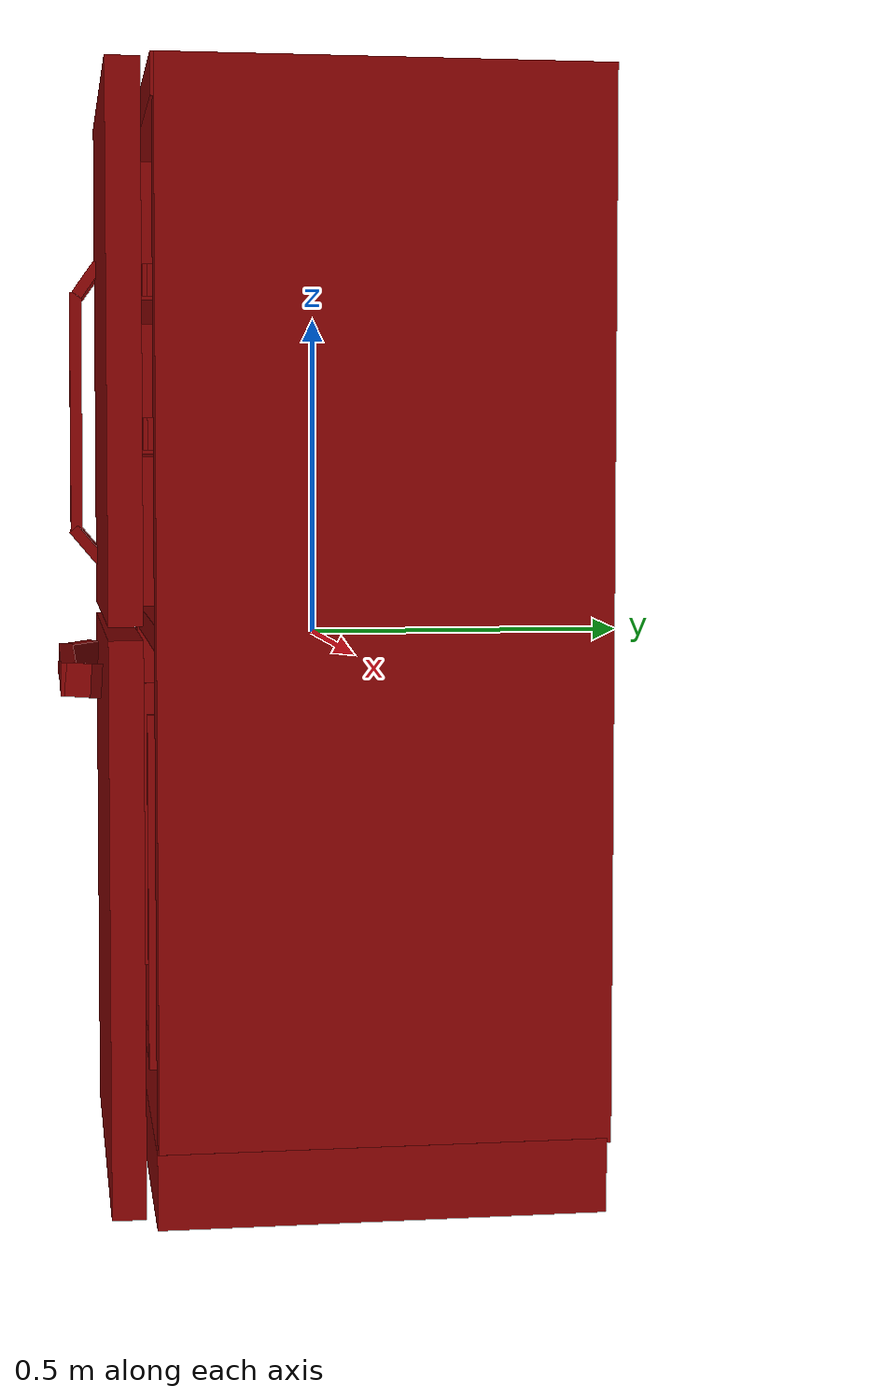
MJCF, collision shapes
<mujoco model="model">
  <compiler angle="radian"/>
  <asset>
    <mesh file="visuals/Body001.obj" name="Body001_vis"/>
    <mesh file="visuals/Body001_Clear.obj" name="Body001_Clear_vis"/>
    <mesh file="visuals/Door001.obj" name="Door001_vis"/>
    <mesh file="visuals/Door001_Clear.obj" name="Door001_Clear_vis"/>
    <mesh file="visuals/Drawer001.obj" name="Drawer001_vis"/>
    <mesh file="visuals/Drawer002.obj" name="Drawer002_vis"/>
    <texture file="visuals/T_BC001.png" name="Body001_material" type="2d"/>
    <material name="Body001_material" rgba="1 1 1 1.0" texture="Body001_material" shininess="0.4472135901451111" specular="1"/>
    <texture file="visuals/T_BC001.png" name="Body001_Clear_material" type="2d"/>
    <material name="Body001_Clear_material" rgba="1 1 1 0.30000001192092896" texture="Body001_Clear_material" shininess="0.4472135901451111" specular="1"/>
    <texture file="visuals/T_BC001.png" name="Door001_material" type="2d"/>
    <material name="Door001_material" rgba="1 1 1 1.0" texture="Door001_material" shininess="0.4472135901451111" specular="1"/>
    <texture file="visuals/T_BC001.png" name="Door001_Clear_material" type="2d"/>
    <material name="Door001_Clear_material" rgba="1 1 1 0.30000001192092896" texture="Door001_Clear_material" shininess="0.4472135901451111" specular="1"/>
    <texture file="visuals/T_BC001.png" name="Drawer001_material" type="2d"/>
    <material name="Drawer001_material" rgba="1 1 1 1.0" texture="Drawer001_material" shininess="0.4472135901451111" specular="1"/>
    <texture file="visuals/T_BC001.png" name="Drawer002_material" type="2d"/>
    <material name="Drawer002_material" rgba="1 1 1 1.0" texture="Drawer002_material" shininess="0.4472135901451111" specular="1"/>
  </asset>
  <default>
    <default class="visual">
      <geom conaffinity="0" contype="0" group="1" type="mesh"/>
    </default>
    <default class="collision">
      <geom group="0" rgba="0.5 0 0 0.5"/>
    </default>
    <default class="spawn">
      <geom group="0" rgba="1 1 1 0.5" contype="0" conaffinity="0"/>
      <site group="0" rgba="1 1 1 0.5"/>
    </default>
    <default class="region">
      <geom group="1" conaffinity="0" contype="0" rgba="0 1 0 0"/>
    </default>
  </default>
  <worldbody>
    <body>
      <body name="object">
        <geom mesh="Body001_vis" type="mesh" solimp="0.998 0.998 0.001" solref="0.001 1" density="100" friction="0.95 0.3 0.1" class="visual" material="Body001_material"/>
        <geom class="collision" type="box" pos="0.000207 0.062188 -0.795457" size="0.38474640250205994 0.335809588432312 0.0562896654009819" quat="1.0 0.0 0.0 0.0"/>
        <geom class="collision" type="box" pos="-0.350294 0.066857 0.052984" size="0.03464663401246071 0.3377648890018463 0.7989732623100281" quat="1.0 0.0 0.0 0.0"/>
        <geom class="collision" type="box" pos="0.350830 0.066857 0.052984" size="0.033837202936410904 0.3377648890018463 0.7989732623100281" quat="1.0 0.0 0.0 0.0"/>
        <geom class="collision" type="box" pos="-0.002849 0.377942 0.052984" size="0.35339677333831787 0.027666687965393066 0.7989393472671509" quat="1.0 0.0 0.0 0.0"/>
        <geom class="collision" type="box" pos="-0.000035 0.061811 0.820714" size="0.38462385535240173 0.3375667929649353 0.031095992773771286" quat="1.0 0.0 0.0 0.0"/>
        <geom class="collision" type="box" pos="-0.000403 0.047778 0.006842" size="0.32612743973731995 0.31402212381362915 0.019892623648047447" quat="1.0 0.0 0.0 0.0"/>
        <body name="Body001_Clear">
          <geom mesh="Body001_Clear_vis" type="mesh" solimp="0.998 0.998 0.001" solref="0.001 1" density="100" friction="0.95 0.3 0.1" class="visual" material="Body001_Clear_material"/>
          <geom class="collision" type="box" pos="-0.000403 0.100657 0.177922" size="0.32995685935020447 0.26769569516181946 0.007554279174655676" quat="1.0 0.0 0.0 0.0"/>
          <geom class="collision" type="box" pos="-0.000403 0.100657 0.493177" size="0.32995718717575073 0.2676953971385956 0.009101681411266327" quat="1.0 0.0 0.0 0.0"/>
        </body>
        <body name="Door001">
          <joint axis="0.0 0.0 1.0" pos="0.345994 -0.314630 0.471886" limited="true" name="Door001_joint" range="0.0 1.5707963267948966" type="hinge" damping="1" frictionloss="1" armature=".01" stiffness="0.05"/>
          <geom mesh="Door001_vis" type="mesh" solimp="0.998 0.998 0.001" solref="0.001 1" density="100" friction="0.95 0.3 0.1" class="visual" material="Door001_material"/>
          <geom class="collision" type="box" pos="-0.018301 -0.313358 0.441951" size="0.3616938292980194 0.025627538561820984 0.410133957862854" quat="1.0 0.0 0.0 0.0"/>
          <geom class="collision" type="box" pos="-0.323685 -0.373325 0.359776" size="0.021720388904213905 0.010037459433078766 0.20516718924045563" quat="1.0 0.0 0.0 0.0"/>
          <geom class="collision" type="box" pos="-0.323685 -0.351311 0.585554" size="0.03235507756471634 0.00965392030775547 0.021713199093937874" quat="0.6922426819801331 -0.18632327020168304 0.6547523736953735 -0.23954761028289795"/>
          <geom class="collision" type="box" pos="-0.323685 -0.351977 0.131928" size="0.04001263529062271 0.00952011439949274 0.0217122845351696" quat="0.6414079070091248 0.2679930031299591 0.6859421133995056 0.21507927775382996"/>
          <body name="Door001_Clear">
            <geom mesh="Door001_Clear_vis" type="mesh" solimp="0.998 0.998 0.001" solref="0.001 1" density="100" friction="0.95 0.3 0.1" class="visual" material="Door001_Clear_material"/>
            <geom class="collision" type="box" pos="-0.000403 -0.233061 0.512875" size="0.2680552899837494 0.051691677421331406 0.0026308554224669933" quat="1.0 0.0 0.0 0.0"/>
            <geom class="collision" type="box" pos="-0.000403 -0.181367 0.536245" size="0.2680552899837494 0.02683096192777157 0.0031687419395893812" quat="0.7433175444602966 0.6689386963844299 -1.370751565657062e-16 2.3012940536639805e-17"/>
            <geom class="collision" type="box" pos="-0.000403 -0.280055 0.537071" size="0.2680506706237793 0.003174012992531061 0.026299597695469856" quat="1.0 0.0 0.0 0.0"/>
            <geom class="collision" type="box" pos="-0.266085 -0.227788 0.537071" size="0.003381570568308234 0.054306916892528534 0.02629960887134075" quat="1.0 0.0 0.0 0.0"/>
            <geom class="collision" type="box" pos="0.261975 -0.227788 0.537071" size="0.003381570568308234 0.054306916892528534 0.02629960887134075" quat="1.0 0.0 0.0 0.0"/>
            <geom class="collision" type="box" pos="-0.000403 -0.233061 0.287084" size="0.2680552899837494 0.05169135704636574 0.0026308391243219376" quat="1.0 0.0 0.0 0.0"/>
            <geom class="collision" type="box" pos="-0.000403 -0.181367 0.310454" size="0.2680552899837494 0.02683096192777157 0.0031687419395893812" quat="0.7433175444602966 0.6689386963844299 -1.370751565657062e-16 2.3012940536639805e-17"/>
            <geom class="collision" type="box" pos="-0.000403 -0.280055 0.311281" size="0.26805150508880615 0.003174012992531061 0.026299597695469856" quat="1.0 0.0 0.0 0.0"/>
            <geom class="collision" type="box" pos="-0.266085 -0.227788 0.311281" size="0.003381570568308234 0.054306916892528534 0.02629960887134075" quat="1.0 0.0 0.0 0.0"/>
            <geom class="collision" type="box" pos="0.261975 -0.227788 0.311281" size="0.003381570568308234 0.054306916892528534 0.02629960887134075" quat="1.0 0.0 0.0 0.0"/>
          </body>
        </body>
        <body name="Drawer001">
          <joint axis="0.0 -1.0 0.0" pos="0.001412 0.033691 0.119746" limited="true" name="Drawer001_joint" range="0.0 0.5" type="slide" damping="1" frictionloss="1" armature=".01" stiffness="0.05"/>
          <geom mesh="Drawer001_vis" type="mesh" solimp="0.998 0.998 0.001" solref="0.001 1" density="100" friction="0.95 0.3 0.1" class="visual" material="Drawer001_material"/>
          <geom class="collision" type="box" pos="0.001412 0.044360 0.049253" size="0.29042309522628784 0.26674360036849976 0.015563731081783772" quat="1.0 0.0 0.0 0.0"/>
          <geom class="collision" type="box" pos="0.001412 0.304718 0.110836" size="0.2904320955276489 0.007167108356952667 0.052098702639341354" quat="1.0 0.0 0.0 0.0"/>
          <geom class="collision" type="box" pos="0.001412 -0.220850 0.110836" size="0.2904316484928131 0.007167100440710783 0.05209861323237419" quat="1.0 0.0 0.0 0.0"/>
          <geom class="collision" type="box" pos="-0.278554 0.041934 0.110836" size="0.007635742425918579 0.2726026177406311 0.05209760367870331" quat="1.0 0.0 0.0 0.0"/>
          <geom class="collision" type="box" pos="0.279654 0.041934 0.110836" size="0.007635742425918579 0.2726026177406311 0.05209760367870331" quat="1.0 0.0 0.0 0.0"/>
        </body>
        <body name="Drawer002">
          <joint axis="0.0 -1.0 0.0" pos="0.000876 -0.081841 -0.416033" limited="true" name="Drawer002_joint" range="0.0 0.45" type="slide" damping="1" frictionloss="1" armature=".01" stiffness="0.05"/>
          <geom mesh="Drawer002_vis" type="mesh" solimp="0.998 0.998 0.001" solref="0.001 1" density="100" friction="0.95 0.3 0.1" class="visual" material="Drawer002_material"/>
          <geom class="collision" type="box" pos="-0.018301 -0.313358 -0.417934" size="0.36169296503067017 0.025627242401242256 0.4296237826347351" quat="1.0 0.0 0.0 0.0"/>
          <geom class="collision" type="box" pos="0.010486 -0.395324 -0.054389" size="0.20516842603683472 0.011389977298676968 0.02544187754392624" quat="1.0 0.0 0.0 0.0"/>
          <geom class="collision" type="box" pos="0.236264 -0.373094 -0.054389" size="0.03245865926146507 0.009980161674320698 0.025419143959879875" quat="0.02650965005159378 -0.3011360168457031 0.9524694085121155 -0.037635184824466705"/>
          <geom class="collision" type="box" pos="-0.215870 -0.373720 -0.054389" size="0.040137507021427155 0.009861577302217484 0.02541620470583439" quat="0.03149041905999184 -0.3415834903717041 -0.9385782480239868 0.03741570934653282"/>
          <geom class="collision" type="box" pos="0.278966 -0.019066 -0.370189" size="0.007380661554634571 0.2614113986492157 0.2665553689002991" quat="1.0 0.0 0.0 0.0"/>
          <geom class="collision" type="box" pos="-0.276519 -0.019066 -0.370189" size="0.00738067040219903 0.2614116668701172 0.26655569672584534" quat="1.0 0.0 0.0 0.0"/>
          <geom class="collision" type="box" pos="0.001210 0.235058 -0.370189" size="0.2703113555908203 0.007288353517651558 0.2665560245513916" quat="1.0 0.0 0.0 0.0"/>
          <geom class="collision" type="box" pos="0.001210 -0.026089 -0.615281" size="0.2703116238117218 0.25251880288124084 0.02146526798605919" quat="1.0 0.0 0.0 0.0"/>
        </body>
        <geom class="region" name="reg_main" type="box" pos="0.0 0.030806500000000014 0.0" size="0.385 0.3750575 0.8525"/>
      </body>
    </body>
  </worldbody>
  <actuator>
    <motor name="Door001_joint_actuator" joint="Door001_joint" gear="50"/>
    <motor name="Drawer001_joint_actuator" joint="Drawer001_joint" gear="50"/>
    <motor name="Drawer002_joint_actuator" joint="Drawer002_joint" gear="50"/>
  </actuator>
</mujoco>
